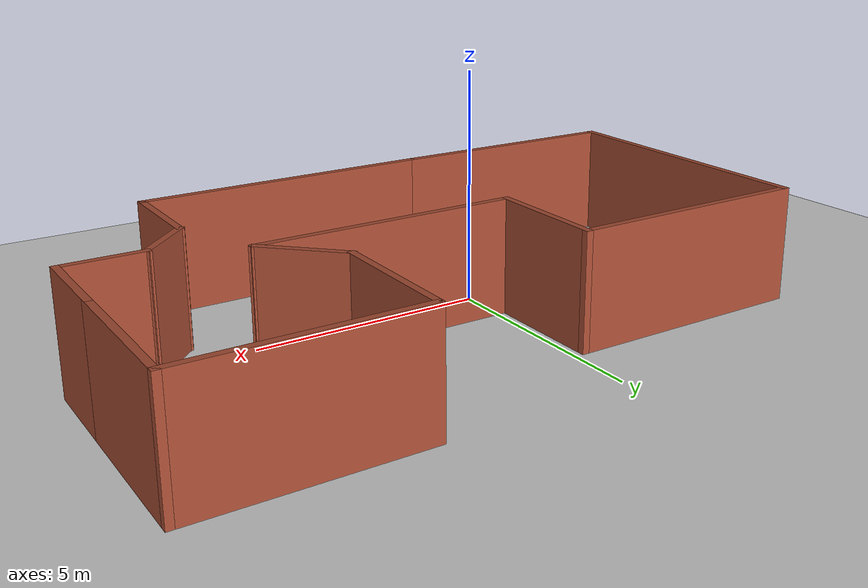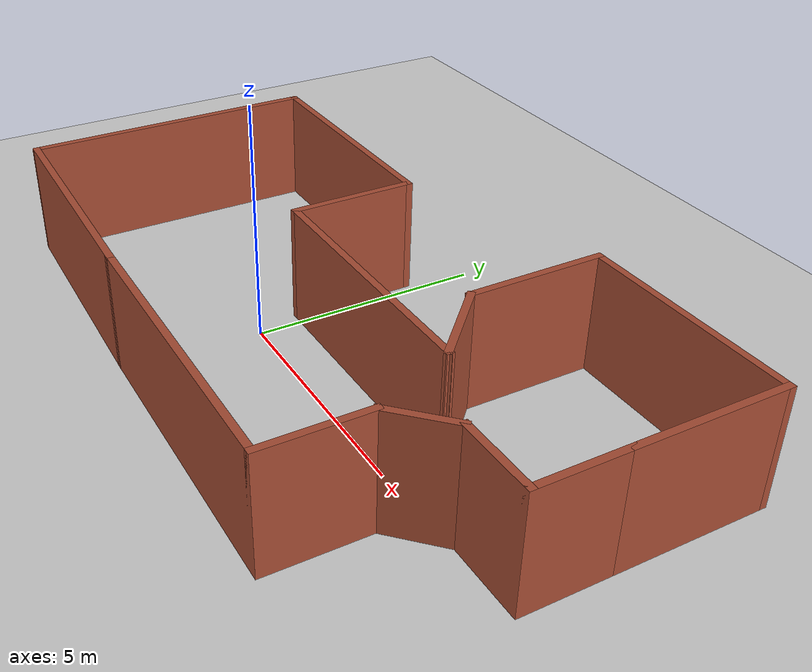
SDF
<sdf version="1.7">
 <world name="default">
  <light name="sun" type="directional">
   <pose>0 0 10 0 -0 0</pose>
   <diffuse>0.8 0.8 0.8 1</diffuse>
   <specular>0.2 0.2 0.2 1</specular>
   <attenuation>
    <range>1000</range>
    <constant>0.9</constant>
    <linear>0.01</linear>
    <quadratic>0.001</quadratic>
   </attenuation>
   <direction>-0.5 0.1 -0.9</direction>
   <spot><inner_angle>0</inner_angle><outer_angle>0</outer_angle><falloff>0</falloff></spot>
  </light>
  <model name="ground_plane">
   <static>1</static>
   <link name="link">
    <collision name="collision">
     <geometry><plane><normal>0 0 1</normal><size>100 100</size></plane></geometry>
     <surface><friction><ode><mu>100</mu><mu2>50</mu2></ode></friction></surface>
    </collision>
    <visual name="visual">
     <cast_shadows>0</cast_shadows>
     <geometry><plane><normal>0 0 1</normal><size>100 100</size></plane></geometry>
     <material>
      <script><uri>file://media/materials/scripts/gazebo.material</uri><name>Gazebo/Grey</name></script>
     </material>
    </visual>
   </link>
  </model>
  <gravity>0 0 -9.8</gravity>
  <magnetic_field>6e-06 2.3e-05 -4.2e-05</magnetic_field>
  <atmosphere type="adiabatic"/>
  <physics type="ode">
   <max_step_size>0.001</max_step_size>
   <real_time_factor>1</real_time_factor>
   <real_time_update_rate>1000</real_time_update_rate>
  </physics>
  <scene><ambient>0.4 0.4 0.4 1</ambient><background>0.7 0.7 0.7 1</background><shadows>1</shadows></scene>
  <audio><device>default</device></audio>
  <spherical_coordinates>
   <surface_model>EARTH_WGS84</surface_model>
   <latitude_deg>0</latitude_deg>
   <longitude_deg>0</longitude_deg>
   <elevation>0</elevation>
   <heading_deg>0</heading_deg>
  </spherical_coordinates>
  <model name="virtual_house">
   <pose>1.52304 1.14811 0 0 -0 0</pose>
   <link name="Wall_0">
    <collision name="Wall_0_Collision">
     <geometry><box><size>6.5 0.15 2.5</size></box></geometry>
     <pose>0 0 1.25 0 -0 0</pose>
    </collision>
    <visual name="Wall_0_Visual">
     <pose>0 0 1.25 0 -0 0</pose>
     <geometry><box><size>6.5 0.15 2.5</size></box></geometry>
     <material>
      <script><uri>file://media/materials/scripts/gazebo.material</uri><name>Gazebo/Bricks</name></script>
      <ambient>1 1 1 1</ambient>
     </material>
     <meta><layer>0</layer></meta>
    </visual>
    <pose>1.392 -4.00163 0 0 -0 0</pose>
   </link>
   <link name="Wall_1">
    <collision name="Wall_1_Collision">
     <geometry><box><size>2.25 0.15 2.5</size></box></geometry>
     <pose>0 0 1.25 0 -0 0</pose>
    </collision>
    <visual name="Wall_1_Visual">
     <pose>0 0 1.25 0 -0 0</pose>
     <geometry><box><size>2.25 0.15 2.5</size></box></geometry>
     <material>
      <script><uri>file://media/materials/scripts/gazebo.material</uri><name>Gazebo/Bricks</name></script>
      <ambient>1 1 1 1</ambient>
     </material>
     <meta><layer>0</layer></meta>
    </visual>
    <pose>4.567 -2.95163 0 0 -0 1.5708</pose>
   </link>
   <link name="Wall_10">
    <collision name="Wall_10_Collision">
     <geometry><box><size>4.75 0.15 2.5</size></box></geometry>
     <pose>0 0 1.25 0 -0 0</pose>
    </collision>
    <visual name="Wall_10_Visual">
     <pose>0 0 1.25 0 -0 0</pose>
     <geometry><box><size>4.75 0.15 2.5</size></box></geometry>
     <material>
      <script><uri>file://media/materials/scripts/gazebo.material</uri><name>Gazebo/Bricks</name></script>
      <ambient>1 1 1 1</ambient>
     </material>
     <meta><layer>0</layer></meta>
    </visual>
    <pose>4.8216 4.00297 0 0 -0 3.14159</pose>
   </link>
   <link name="Wall_11">
    <collision name="Wall_11_Collision">
     <geometry><box><size>3 0.15 2.5</size></box></geometry>
     <pose>0 0 1.25 0 -0 0</pose>
    </collision>
    <visual name="Wall_11_Visual">
     <pose>0 0 1.25 0 -0 0</pose>
     <geometry><box><size>3 0.15 2.5</size></box></geometry>
     <material>
      <script><uri>file://media/materials/scripts/gazebo.material</uri><name>Gazebo/Bricks</name></script>
      <ambient>1 1 1 1</ambient>
     </material>
     <meta><layer>0</layer></meta>
    </visual>
    <pose>2.5216 2.57797 0 0 -0 -1.5708</pose>
   </link>
   <link name="Wall_12">
    <collision name="Wall_12_Collision">
     <geometry><box><size>2 0.15 2.5</size></box></geometry>
     <pose>0 0 1.25 0 -0 0</pose>
    </collision>
    <visual name="Wall_12_Visual">
     <pose>0 0 1.25 0 -0 0</pose>
     <geometry><box><size>2 0.15 2.5</size></box></geometry>
     <material>
      <script><uri>file://media/materials/scripts/gazebo.material</uri><name>Gazebo/Bricks</name></script>
      <ambient>1 1 1 1</ambient>
     </material>
     <meta><layer>0</layer></meta>
    </visual>
    <pose>3.17567 0.498894 0 0 -0 -0.785398</pose>
   </link>
   <link name="Wall_13">
    <collision name="Wall_13_Collision">
     <geometry><box><size>5.75 0.15 2.5</size></box></geometry>
     <pose>0 0 1.25 0 -0 0</pose>
    </collision>
    <visual name="Wall_13_Visual">
     <pose>0 0 1.25 0 -0 0</pose>
     <geometry><box><size>5.75 0.15 2.5</size></box></geometry>
     <material>
      <script><uri>file://media/materials/scripts/gazebo.material</uri><name>Gazebo/Bricks</name></script>
      <ambient>1 1 1 1</ambient>
     </material>
     <meta><layer>0</layer></meta>
    </visual>
    <pose>1.02975 -0.155179 0 0 -0 3.14159</pose>
   </link>
   <link name="Wall_14">
    <collision name="Wall_14_Collision">
     <geometry><box><size>2.75 0.15 2.5</size></box></geometry>
     <pose>0 0 1.25 0 -0 0</pose>
    </collision>
    <visual name="Wall_14_Visual">
     <pose>0 0 1.25 0 -0 0</pose>
     <geometry><box><size>2.75 0.15 2.5</size></box></geometry>
     <material>
      <script><uri>file://media/materials/scripts/gazebo.material</uri><name>Gazebo/Bricks</name></script>
      <ambient>1 1 1 1</ambient>
     </material>
     <meta><layer>0</layer></meta>
    </visual>
    <pose>-1.77025 1.14482 0 0 -0 1.5708</pose>
   </link>
   <link name="Wall_15">
    <collision name="Wall_15_Collision">
     <geometry><box><size>5.5 0.15 2.5</size></box></geometry>
     <pose>0 0 1.25 0 -0 0</pose>
    </collision>
    <visual name="Wall_15_Visual">
     <pose>0 0 1.25 0 -0 0</pose>
     <geometry><box><size>5.5 0.15 2.5</size></box></geometry>
     <material>
      <script><uri>file://media/materials/scripts/gazebo.material</uri><name>Gazebo/Bricks</name></script>
      <ambient>1 1 1 1</ambient>
     </material>
     <meta><layer>0</layer></meta>
    </visual>
    <pose>-4.44525 2.44482 0 0 -0 3.14159</pose>
   </link>
   <link name="Wall_16">
    <collision name="Wall_16_Collision">
     <geometry><box><size>6.5 0.15 2.5</size></box></geometry>
     <pose>0 0 1.25 0 -0 0</pose>
    </collision>
    <visual name="Wall_16_Visual">
     <pose>0 0 1.25 0 -0 0</pose>
     <geometry><box><size>6.5 0.15 2.5</size></box></geometry>
     <material>
      <script><uri>file://media/materials/scripts/gazebo.material</uri><name>Gazebo/Bricks</name></script>
      <ambient>1 1 1 1</ambient>
     </material>
     <meta><layer>0</layer></meta>
    </visual>
    <pose>-7.12026 -0.730179 0 0 -0 -1.5708</pose>
   </link>
   <link name="Wall_17">
    <collision name="Wall_17_Collision">
     <geometry><box><size>5.48813 0.15 2.5</size></box></geometry>
     <pose>0 0 1.25 0 -0 0</pose>
    </collision>
    <visual name="Wall_17_Visual">
     <pose>0 0 1.25 0 -0 0</pose>
     <geometry><box><size>5.48813 0.15 2.5</size></box></geometry>
     <material>
      <script><uri>file://media/materials/scripts/gazebo.material</uri><name>Gazebo/Bricks</name></script>
      <ambient>1 1 1 1</ambient>
     </material>
     <meta><layer>0</layer></meta>
    </visual>
    <pose>-4.45162 -3.9534 0 0 -0 -0.018068</pose>
   </link>
   <link name="Wall_5">
    <collision name="Wall_5_Collision">
     <geometry><box><size>1.5 0.15 2.5</size></box></geometry>
     <pose>0 0 1.25 0 -0 0</pose>
    </collision>
    <visual name="Wall_5_Visual">
     <pose>0 0 1.25 0 -0 0</pose>
     <geometry><box><size>1.5 0.15 2.5</size></box></geometry>
     <material>
      <script><uri>file://media/materials/scripts/gazebo.material</uri><name>Gazebo/Bricks</name></script>
      <ambient>1 1 1 1</ambient>
     </material>
     <meta><layer>0</layer></meta>
    </visual>
    <pose>5.0443 -1.42433 0 0 -0 0.785398</pose>
   </link>
   <link name="Wall_6">
    <collision name="Wall_6_Collision">
     <geometry><box><size>1.75 0.15 2.5</size></box></geometry>
     <pose>0 0 1.25 0 -0 0</pose>
    </collision>
    <visual name="Wall_6_Visual">
     <pose>0 0 1.25 0 -0 0</pose>
     <geometry><box><size>1.75 0.15 2.5</size></box></geometry>
     <material>
      <script><uri>file://media/materials/scripts/gazebo.material</uri><name>Gazebo/Bricks</name></script>
      <ambient>1 1 1 1</ambient>
     </material>
     <meta><layer>0</layer></meta>
    </visual>
    <pose>6.3216 -0.947032 0 0 -0 0</pose>
   </link>
   <link name="Wall_7">
    <collision name="Wall_7_Collision">
     <geometry><box><size>2 0.15 2.5</size></box></geometry>
     <pose>0 0 1.25 0 -0 0</pose>
    </collision>
    <visual name="Wall_7_Visual">
     <pose>0 0 1.25 0 -0 0</pose>
     <geometry><box><size>2 0.15 2.5</size></box></geometry>
     <material>
      <script><uri>file://media/materials/scripts/gazebo.material</uri><name>Gazebo/Bricks</name></script>
      <ambient>1 1 1 1</ambient>
     </material>
     <meta><layer>0</layer></meta>
    </visual>
    <pose>7.1216 -0.022032 0 0 -0 1.5708</pose>
   </link>
   <link name="Wall_9">
    <collision name="Wall_9_Collision">
     <geometry><box><size>3.25 0.15 2.5</size></box></geometry>
     <pose>0 0 1.25 0 -0 0</pose>
    </collision>
    <visual name="Wall_9_Visual">
     <pose>0 0 1.25 0 -0 0</pose>
     <geometry><box><size>3.25 0.15 2.5</size></box></geometry>
     <material>
      <script><uri>file://media/materials/scripts/gazebo.material</uri><name>Gazebo/Bricks</name></script>
      <ambient>1 1 1 1</ambient>
     </material>
     <meta><layer>0</layer></meta>
    </visual>
    <pose>7.1216 2.45297 0 0 -0 1.5708</pose>
   </link>
   <static>1</static>
  </model>
 </world>
</sdf>
